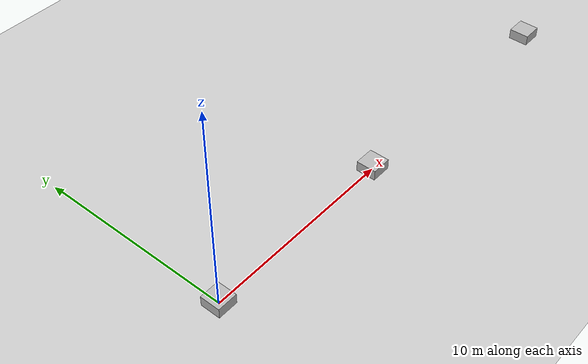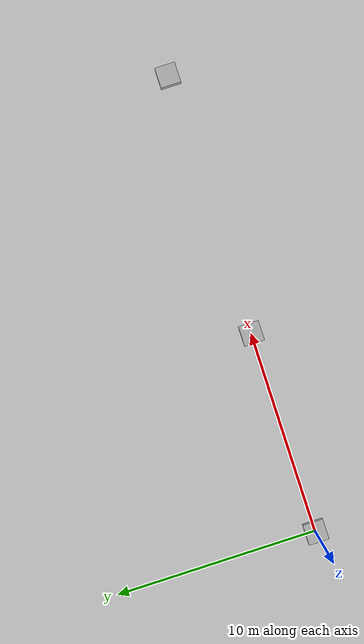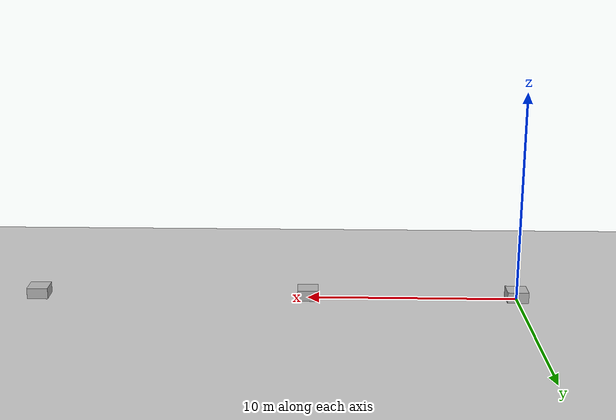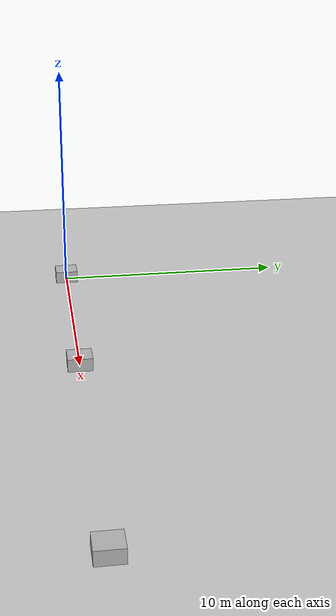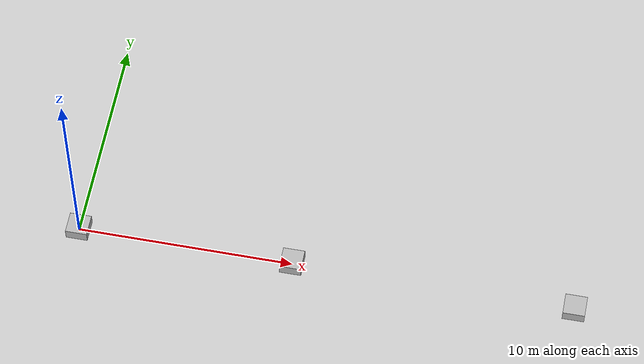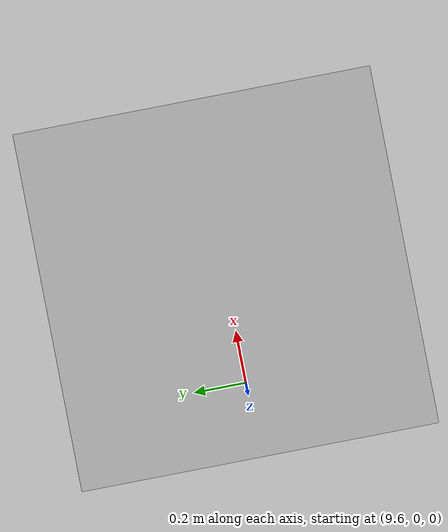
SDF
<?xml version="1.0"?>
<sdf version="1.6">
  <world name="gazebo_ros_rtls_transceiver_world">
    <include>
      <uri>model://ground_plane</uri>
    </include>
    <include>
      <uri>model://sun</uri>
    </include>
    <model name="transceiver0">
      <pose>0 0 0.0 0 0 0</pose>
      <link name="transceiver0_link">
        <collision name="collision">
          <geometry>
            <box>
              <size>1 1 1</size>
            </box>
          </geometry>
        </collision>
        <visual name="visual">
          <geometry>
            <box>
              <size>1 1 1</size>
            </box>
          </geometry>
        </visual>
      </link>
      <plugin filename="libromea_gazebo_ros_rtls_transceiver.so" name="driver">
        <link_name>transceiver0_link</link_name>
        <xyz>0.0 0.0 0.0</xyz>
        <mode>slave</mode>
        <transceiver_name>transceiver0</transceiver_name>
        <transceiver_pan_id>0</transceiver_pan_id>
        <transceiver_id>0</transceiver_id>
        <minimal_range>0.5</minimal_range>
        <maximal_range>25.0</maximal_range>
        <noise_a>0.001</noise_a>
        <noise_b>0.02</noise_b>
        <ros>
          <namespace>transceiver0</namespace>
        </ros>
      </plugin>
    </model>

    <model name="transceiver1">
      <pose>10.0 0 0.0 0 0 0</pose>
      <link name="transceiver1_link">
        <collision name="collision">
          <geometry>
            <box>
              <size>1 1 1</size>
            </box>
          </geometry>
        </collision>
        <visual name="visual">
          <geometry>
            <box>
              <size>1 1 1</size>
            </box>
          </geometry>
        </visual>
      </link>
      <plugin filename="libromea_gazebo_ros_rtls_transceiver.so" name="driver">
        <link_name>transceiver1_link</link_name>
        <xyz>0.0 0.0 0.0</xyz>
        <mode>standalone</mode>
        <transceiver_name>transceiver1</transceiver_name>
        <transceiver_pan_id>0</transceiver_pan_id>
        <transceiver_id>1</transceiver_id>
        <minimal_range>0.5</minimal_range>
        <maximal_range>25.0</maximal_range>
        <noise_a>0.001</noise_a>
        <noise_b>0.02</noise_b>
        <ros>
          <namespace>transceiver1</namespace>
        </ros>
      </plugin>
    </model>

    <model name="transceiver2">
      <pose>23.0 0 0.0 0 0 0</pose>
      <link name="transceiver2_link">
        <collision name="collision">
          <geometry>
            <box>
              <size>1 1 1</size>
            </box>
          </geometry>
        </collision>
        <visual name="visual">
          <geometry>
            <box>
              <size>1 1 1</size>
            </box>
          </geometry>
        </visual>
      </link>
      <plugin filename="libromea_gazebo_ros_rtls_transceiver.so" name="driver">
        <link_name>transceiver2_link</link_name>
        <xyz>0.0 0.0 0.0</xyz>
        <mode>slave</mode>
        <transceiver_name>transceiver2</transceiver_name>
        <transceiver_pan_id>0</transceiver_pan_id>
        <transceiver_id>2</transceiver_id>
        <minimal_range>0.5</minimal_range>
        <maximal_range>12.0</maximal_range>
        <noise_a>0.001</noise_a>
        <noise_b>0.02</noise_b>
        <ros>
          <namespace>transceiver2</namespace>
        </ros>
      </plugin>
    </model>

  </world>
</sdf>
